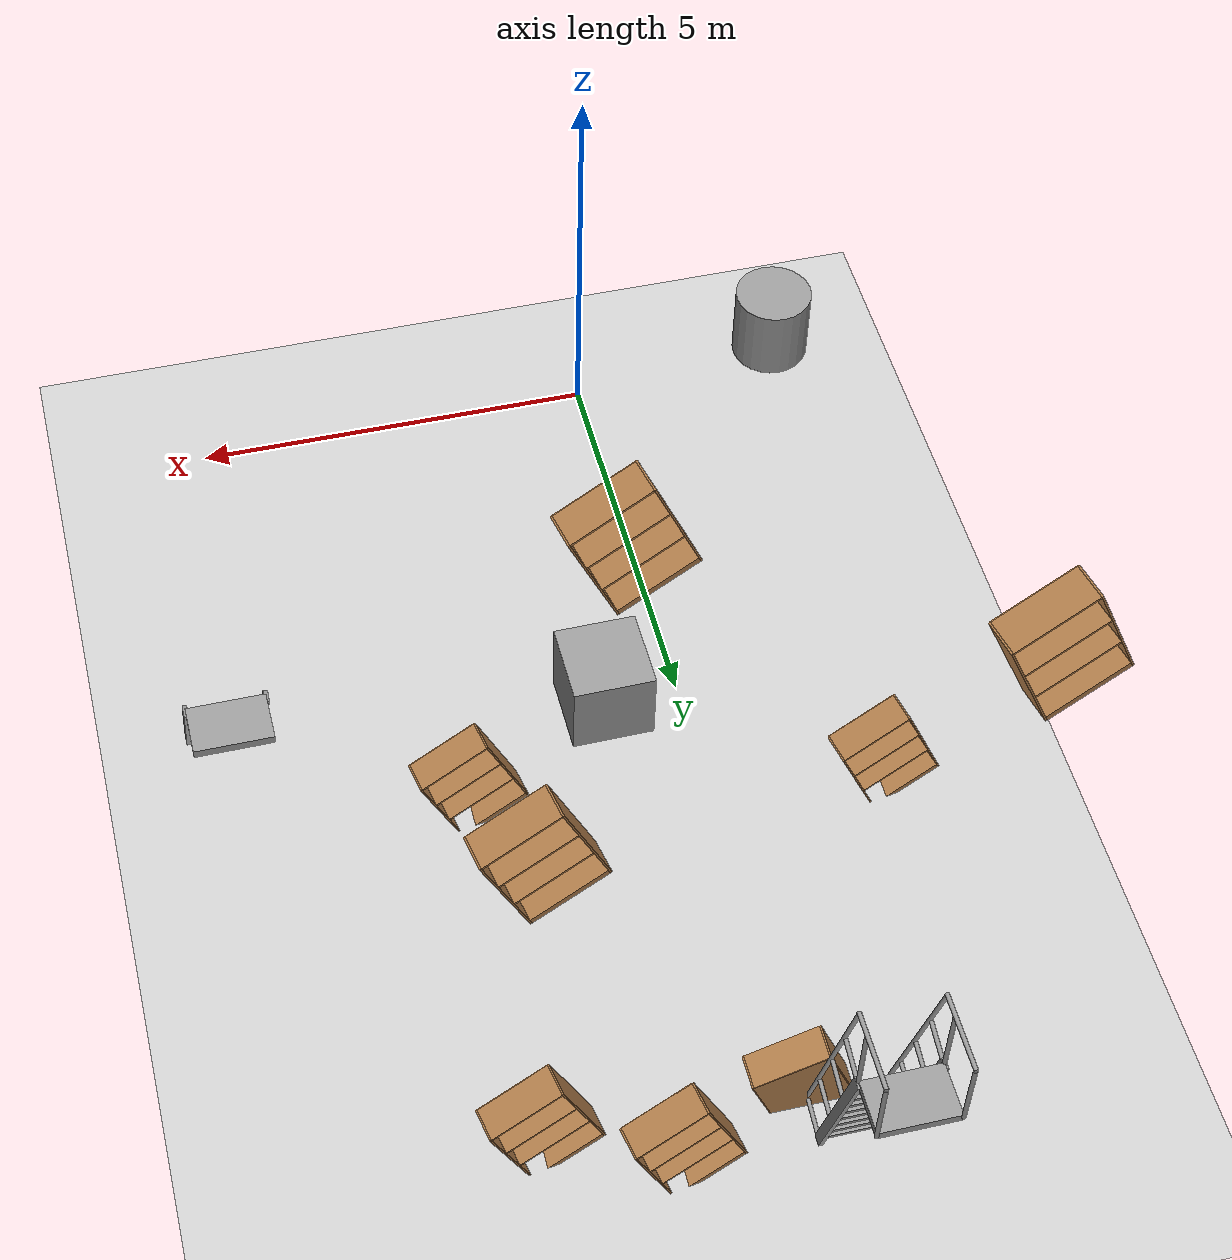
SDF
<sdf version="1.6">
 <world name="default">
  <model name="ground_plane">
   <static>1</static>
   <link name="link">
    <collision name="collision">
     <geometry><plane><normal>0 0 1</normal><size>100 100</size></plane></geometry>
     <surface><friction><ode><mu>100</mu><mu2>50</mu2></ode></friction></surface>
    </collision>
    <visual name="visual">
     <cast_shadows>0</cast_shadows>
     <geometry><plane><normal>0 0 1</normal><size>100 100</size></plane></geometry>
     <material>
      <script><uri>file://media/materials/scripts/gazebo.material</uri><name>Gazebo/Grey</name></script>
     </material>
    </visual>
   </link>
  </model>
  <model name="unit_cylinder">
   <pose>-2.73222 -0.271619 0.499994 -4e-06 -1e-06 0</pose>
   <link name="unit_cylinder::link">
    <inertial>
     <mass>1</mass>
     <inertia><ixx>0.145833</ixx><ixy>0</ixy><ixz>0</ixz><iyy>0.145833</iyy><iyz>0</iyz><izz>0.125</izz></inertia>
    </inertial>
    <collision name="collision">
     <geometry><cylinder><radius>0.5</radius><length>1</length></cylinder></geometry>
    </collision>
    <visual name="visual">
     <geometry><cylinder><radius>0.5</radius><length>1</length></cylinder></geometry>
     <material>
      <script><name>Gazebo/Grey</name><uri>file://media/materials/scripts/gazebo.material</uri></script>
     </material>
    </visual>
    <enable_wind>1</enable_wind>
    <kinematic>1</kinematic>
   </link>
  </model>
  <model name="bookshelf_0_clone_1">
   <static>1</static>
   <link name="link">
    <inertial><mass>1</mass></inertial>
    <collision name="back">
     <pose>0 0.005 0.6 0 -0 0</pose>
     <geometry><box><size>0.9 0.01 1.2</size></box></geometry>
    </collision>
    <visual name="visual1">
     <pose>0 0.005 0.6 0 -0 0</pose>
     <geometry><box><size>0.9 0.01 1.2</size></box></geometry>
     <material>
      <script><uri>file://media/materials/scripts/gazebo.material</uri><name>Gazebo/Wood</name></script>
     </material>
    </visual>
    <collision name="left_side">
     <pose>0.45 -0.195 0.6 0 -0 0</pose>
     <geometry><box><size>0.02 0.4 1.2</size></box></geometry>
    </collision>
    <visual name="visual2">
     <pose>0.45 -0.195 0.6 0 -0 0</pose>
     <geometry><box><size>0.02 0.4 1.2</size></box></geometry>
     <material>
      <script><uri>file://media/materials/scripts/gazebo.material</uri><name>Gazebo/Wood</name></script>
     </material>
    </visual>
    <collision name="right_side">
     <pose>-0.45 -0.195 0.6 0 -0 0</pose>
     <geometry><box><size>0.02 0.4 1.2</size></box></geometry>
    </collision>
    <visual name="visual3">
     <pose>-0.45 -0.195 0.6 0 -0 0</pose>
     <geometry><box><size>0.02 0.4 1.2</size></box></geometry>
     <material>
      <script><uri>file://media/materials/scripts/gazebo.material</uri><name>Gazebo/Wood</name></script>
     </material>
    </visual>
    <collision name="bottom">
     <pose>0 -0.195 0.03 0 -0 0</pose>
     <geometry><box><size>0.88 0.4 0.06</size></box></geometry>
    </collision>
    <visual name="visual4">
     <pose>0 -0.195 0.03 0 -0 0</pose>
     <geometry><box><size>0.88 0.4 0.06</size></box></geometry>
     <material>
      <script><uri>file://media/materials/scripts/gazebo.material</uri><name>Gazebo/Wood</name></script>
     </material>
    </visual>
    <collision name="top">
     <pose>0 -0.195 1.19 0 -0 0</pose>
     <geometry><box><size>0.88 0.4 0.02</size></box></geometry>
    </collision>
    <visual name="visual5">
     <pose>0 -0.195 1.19 0 -0 0</pose>
     <geometry><box><size>0.88 0.4 0.02</size></box></geometry>
     <material>
      <script><uri>file://media/materials/scripts/gazebo.material</uri><name>Gazebo/Wood</name></script>
     </material>
    </visual>
    <collision name="low_shelf">
     <pose>0 -0.195 0.43 0 -0 0</pose>
     <geometry><box><size>0.88 0.4 0.02</size></box></geometry>
    </collision>
    <visual name="visual6">
     <pose>0 -0.195 0.43 0 -0 0</pose>
     <geometry><box><size>0.88 0.4 0.02</size></box></geometry>
     <material>
      <script><uri>file://media/materials/scripts/gazebo.material</uri><name>Gazebo/Wood</name></script>
     </material>
    </visual>
    <collision name="high_shelf">
     <pose>0 -0.195 0.8 0 -0 0</pose>
     <geometry><box><size>0.88 0.4 0.02</size></box></geometry>
    </collision>
    <visual name="visual7">
     <pose>0 -0.195 0.8 0 -0 0</pose>
     <geometry><box><size>0.88 0.4 0.02</size></box></geometry>
     <material>
      <script><uri>file://media/materials/scripts/gazebo.material</uri><name>Gazebo/Wood</name></script>
     </material>
    </visual>
   </link>
   <pose>-0.09659 10.8007 -0.3401 0 0.357608 0</pose>
  </model>
  <model name="unit_box_1_clone_clone">
   <pose>0.931791 5.07815 0.499995 0 1e-05 0.005799</pose>
   <link name="unit_box_1_clone::link">
    <inertial>
     <mass>1</mass>
     <inertia>
      <ixx>0.166667</ixx>
      <ixy>0</ixy>
      <ixz>0</ixz>
      <iyy>0.166667</iyy>
      <iyz>0</iyz>
      <izz>0.166667</izz>
     </inertia>
    </inertial>
    <collision name="collision"><geometry><box><size>1 1 1</size></box></geometry></collision>
    <visual name="visual">
     <geometry><box><size>1 1 1</size></box></geometry>
     <material>
      <script><name>Gazebo/Grey</name><uri>file://media/materials/scripts/gazebo.material</uri></script>
     </material>
    </visual>
   </link>
  </model>
  <model name="bookshelf_2">
   <static>1</static>
   <link name="link">
    <inertial><mass>1</mass></inertial>
    <collision name="back">
     <pose>0 0.005 0.6 0 -0 0</pose>
     <geometry><box><size>0.9 0.01 1.2</size></box></geometry>
    </collision>
    <visual name="visual1">
     <pose>0 0.005 0.6 0 -0 0</pose>
     <geometry><box><size>0.9 0.01 1.2</size></box></geometry>
     <material>
      <script><uri>file://media/materials/scripts/gazebo.material</uri><name>Gazebo/Wood</name></script>
     </material>
    </visual>
    <collision name="left_side">
     <pose>0.45 -0.195 0.6 0 -0 0</pose>
     <geometry><box><size>0.02 0.4 1.2</size></box></geometry>
    </collision>
    <visual name="visual2">
     <pose>0.45 -0.195 0.6 0 -0 0</pose>
     <geometry><box><size>0.02 0.4 1.2</size></box></geometry>
     <material>
      <script><uri>file://media/materials/scripts/gazebo.material</uri><name>Gazebo/Wood</name></script>
     </material>
    </visual>
    <collision name="right_side">
     <pose>-0.45 -0.195 0.6 0 -0 0</pose>
     <geometry><box><size>0.02 0.4 1.2</size></box></geometry>
    </collision>
    <visual name="visual3">
     <pose>-0.45 -0.195 0.6 0 -0 0</pose>
     <geometry><box><size>0.02 0.4 1.2</size></box></geometry>
     <material>
      <script><uri>file://media/materials/scripts/gazebo.material</uri><name>Gazebo/Wood</name></script>
     </material>
    </visual>
    <collision name="bottom">
     <pose>0 -0.195 0.03 0 -0 0</pose>
     <geometry><box><size>0.88 0.4 0.06</size></box></geometry>
    </collision>
    <visual name="visual4">
     <pose>0 -0.195 0.03 0 -0 0</pose>
     <geometry><box><size>0.88 0.4 0.06</size></box></geometry>
     <material>
      <script><uri>file://media/materials/scripts/gazebo.material</uri><name>Gazebo/Wood</name></script>
     </material>
    </visual>
    <collision name="top">
     <pose>0 -0.195 1.19 0 -0 0</pose>
     <geometry><box><size>0.88 0.4 0.02</size></box></geometry>
    </collision>
    <visual name="visual5">
     <pose>0 -0.195 1.19 0 -0 0</pose>
     <geometry><box><size>0.88 0.4 0.02</size></box></geometry>
     <material>
      <script><uri>file://media/materials/scripts/gazebo.material</uri><name>Gazebo/Wood</name></script>
     </material>
    </visual>
    <collision name="low_shelf">
     <pose>0 -0.195 0.43 0 -0 0</pose>
     <geometry><box><size>0.88 0.4 0.02</size></box></geometry>
    </collision>
    <visual name="visual6">
     <pose>0 -0.195 0.43 0 -0 0</pose>
     <geometry><box><size>0.88 0.4 0.02</size></box></geometry>
     <material>
      <script><uri>file://media/materials/scripts/gazebo.material</uri><name>Gazebo/Wood</name></script>
     </material>
    </visual>
    <collision name="high_shelf">
     <pose>0 -0.195 0.8 0 -0 0</pose>
     <geometry><box><size>0.88 0.4 0.02</size></box></geometry>
    </collision>
    <visual name="visual7">
     <pose>0 -0.195 0.8 0 -0 0</pose>
     <geometry><box><size>0.88 0.4 0.02</size></box></geometry>
     <material>
      <script><uri>file://media/materials/scripts/gazebo.material</uri><name>Gazebo/Wood</name></script>
     </material>
    </visual>
   </link>
   <pose>-2.19777 6.68853 0 -0.077915 -0.400957 -2.94416</pose>
  </model>
  <model name="ladder_60deg_0rails">
   <static>1</static>
   <link name="step0">
    <pose>0 0.15396 0.266667 0 -0 0</pose>
    <inertial>
     <mass>9.75482</mass>
     <inertia>
      <ixx>0.00957124</ixx>
      <iyy>0.65963</iyy>
      <izz>0.666842</izz>
      <ixy>0</ixy>
      <ixz>0</ixz>
      <iyz>0</iyz>
     </inertia>
    </inertial>
    <collision name="collision"><geometry><box><size>0.9 0.1016 0.0381</size></box></geometry></collision>
    <visual name="visual">
     <geometry><box><size>0.9 0.1016 0.0381</size></box></geometry>
     <material>
      <script><uri>file://media/materials/scripts/gazebo.material</uri><name>Gazebo/Grey</name></script>
     </material>
    </visual>
   </link>
   <link name="step1">
    <pose>0 0.30792 0.533333 0 -0 0</pose>
    <inertial>
     <mass>9.75482</mass>
     <inertia>
      <ixx>0.00957124</ixx>
      <iyy>0.65963</iyy>
      <izz>0.666842</izz>
      <ixy>0</ixy>
      <ixz>0</ixz>
      <iyz>0</iyz>
     </inertia>
    </inertial>
    <collision name="collision"><geometry><box><size>0.9 0.1016 0.0381</size></box></geometry></collision>
    <visual name="visual">
     <geometry><box><size>0.9 0.1016 0.0381</size></box></geometry>
     <material>
      <script><uri>file://media/materials/scripts/gazebo.material</uri><name>Gazebo/Grey</name></script>
     </material>
    </visual>
   </link>
   <link name="step2">
    <pose>0 0.46188 0.8 0 -0 0</pose>
    <inertial>
     <mass>9.75482</mass>
     <inertia>
      <ixx>0.00957124</ixx>
      <iyy>0.65963</iyy>
      <izz>0.666842</izz>
      <ixy>0</ixy>
      <ixz>0</ixz>
      <iyz>0</iyz>
     </inertia>
    </inertial>
    <collision name="collision"><geometry><box><size>0.9 0.1016 0.0381</size></box></geometry></collision>
    <visual name="visual">
     <geometry><box><size>0.9 0.1016 0.0381</size></box></geometry>
     <material>
      <script><uri>file://media/materials/scripts/gazebo.material</uri><name>Gazebo/Grey</name></script>
     </material>
    </visual>
   </link>
   <link name="step3">
    <pose>0 0.61584 1.06667 0 -0 0</pose>
    <inertial>
     <mass>9.75482</mass>
     <inertia>
      <ixx>0.00957124</ixx>
      <iyy>0.65963</iyy>
      <izz>0.666842</izz>
      <ixy>0</ixy>
      <ixz>0</ixz>
      <iyz>0</iyz>
     </inertia>
    </inertial>
    <collision name="collision"><geometry><box><size>0.9 0.1016 0.0381</size></box></geometry></collision>
    <visual name="visual">
     <geometry><box><size>0.9 0.1016 0.0381</size></box></geometry>
     <material>
      <script><uri>file://media/materials/scripts/gazebo.material</uri><name>Gazebo/Grey</name></script>
     </material>
    </visual>
   </link>
   <link name="step4">
    <pose>0 0.7698 1.33333 0 -0 0</pose>
    <inertial>
     <mass>9.75482</mass>
     <inertia>
      <ixx>0.00957124</ixx>
      <iyy>0.65963</iyy>
      <izz>0.666842</izz>
      <ixy>0</ixy>
      <ixz>0</ixz>
      <iyz>0</iyz>
     </inertia>
    </inertial>
    <collision name="collision"><geometry><box><size>0.9 0.1016 0.0381</size></box></geometry></collision>
    <visual name="visual">
     <geometry><box><size>0.9 0.1016 0.0381</size></box></geometry>
     <material>
      <script><uri>file://media/materials/scripts/gazebo.material</uri><name>Gazebo/Grey</name></script>
     </material>
    </visual>
   </link>
   <link name="step5">
    <pose>0 0.92376 1.6 0 -0 0</pose>
    <inertial>
     <mass>9.75482</mass>
     <inertia>
      <ixx>0.00957124</ixx>
      <iyy>0.65963</iyy>
      <izz>0.666842</izz>
      <ixy>0</ixy>
      <ixz>0</ixz>
      <iyz>0</iyz>
     </inertia>
    </inertial>
    <collision name="collision"><geometry><box><size>0.9 0.1016 0.0381</size></box></geometry></collision>
    <visual name="visual">
     <geometry><box><size>0.9 0.1016 0.0381</size></box></geometry>
     <material>
      <script><uri>file://media/materials/scripts/gazebo.material</uri><name>Gazebo/Grey</name></script>
     </material>
    </visual>
   </link>
   <link name="step6">
    <pose>0 1.07772 1.86667 0 -0 0</pose>
    <inertial>
     <mass>9.75482</mass>
     <inertia>
      <ixx>0.00957124</ixx>
      <iyy>0.65963</iyy>
      <izz>0.666842</izz>
      <ixy>0</ixy>
      <ixz>0</ixz>
      <iyz>0</iyz>
     </inertia>
    </inertial>
    <collision name="collision"><geometry><box><size>0.9 0.1016 0.0381</size></box></geometry></collision>
    <visual name="visual">
     <geometry><box><size>0.9 0.1016 0.0381</size></box></geometry>
     <material>
      <script><uri>file://media/materials/scripts/gazebo.material</uri><name>Gazebo/Grey</name></script>
     </material>
    </visual>
   </link>
   <link name="step7">
    <pose>0 1.23168 2.13333 0 -0 0</pose>
    <inertial>
     <mass>9.75482</mass>
     <inertia>
      <ixx>0.00957124</ixx>
      <iyy>0.65963</iyy>
      <izz>0.666842</izz>
      <ixy>0</ixy>
      <ixz>0</ixz>
      <iyz>0</iyz>
     </inertia>
    </inertial>
    <collision name="collision"><geometry><box><size>0.9 0.1016 0.0381</size></box></geometry></collision>
    <visual name="visual">
     <geometry><box><size>0.9 0.1016 0.0381</size></box></geometry>
     <material>
      <script><uri>file://media/materials/scripts/gazebo.material</uri><name>Gazebo/Grey</name></script>
     </material>
    </visual>
   </link>
   <link name="landing">
    <pose>0 1.68564 2.4 0 -0 0</pose>
    <inertial>
     <mass>57.6072</mass>
     <inertia><ixx>1.73518</ixx><iyy>3.89545</iyy><izz>5.6167</izz><ixy>0</ixy><ixz>0</ixz><iyz>0</iyz></inertia>
    </inertial>
    <collision name="collision"><geometry><box><size>0.9 0.6 0.1016</size></box></geometry></collision>
    <visual name="visual">
     <geometry><box><size>0.9 0.6 0.1016</size></box></geometry>
     <material>
      <script><uri>file://media/materials/scripts/gazebo.material</uri><name>Gazebo/Grey</name></script>
     </material>
    </visual>
   </link>
   <link name="left_side_wall">
    <pose>-0.45 0.69282 1.2 1.0472 -0 0</pose>
    <collision name="collision"><geometry><box><size>0.0508 2.85128 0.13</size></box></geometry></collision>
    <visual name="visual">
     <geometry><box><size>0.0508 2.85128 0.13</size></box></geometry>
     <material>
      <script><uri>file://media/materials/scripts/gazebo.material</uri><name>Gazebo/Grey</name></script>
     </material>
    </visual>
   </link>
   <link name="right_side_wall">
    <pose>0.45 0.69282 1.2 1.0472 -0 0</pose>
    <collision name="collision"><geometry><box><size>0.0508 2.85128 0.13</size></box></geometry></collision>
    <visual name="visual">
     <geometry><box><size>0.0508 2.85128 0.13</size></box></geometry>
     <material>
      <script><uri>file://media/materials/scripts/gazebo.material</uri><name>Gazebo/Grey</name></script>
     </material>
    </visual>
   </link>
   <pose>5.45548 4.41479 0 0 -0 0</pose>
  </model>
  <model name="ladder_75deg_2rails_0">
   <static>1</static>
   <link name="step0">
    <pose>0 0.071453 0.266667 0 -0 0</pose>
    <inertial>
     <mass>9.75482</mass>
     <inertia>
      <ixx>0.00957124</ixx>
      <iyy>0.65963</iyy>
      <izz>0.666842</izz>
      <ixy>0</ixy>
      <ixz>0</ixz>
      <iyz>0</iyz>
     </inertia>
    </inertial>
    <collision name="collision"><geometry><box><size>0.9 0.1016 0.0381</size></box></geometry></collision>
    <visual name="visual">
     <geometry><box><size>0.9 0.1016 0.0381</size></box></geometry>
     <material>
      <script><uri>file://media/materials/scripts/gazebo.material</uri><name>Gazebo/Grey</name></script>
     </material>
    </visual>
   </link>
   <link name="step1">
    <pose>0 0.142906 0.533333 0 -0 0</pose>
    <inertial>
     <mass>9.75482</mass>
     <inertia>
      <ixx>0.00957124</ixx>
      <iyy>0.65963</iyy>
      <izz>0.666842</izz>
      <ixy>0</ixy>
      <ixz>0</ixz>
      <iyz>0</iyz>
     </inertia>
    </inertial>
    <collision name="collision"><geometry><box><size>0.9 0.1016 0.0381</size></box></geometry></collision>
    <visual name="visual">
     <geometry><box><size>0.9 0.1016 0.0381</size></box></geometry>
     <material>
      <script><uri>file://media/materials/scripts/gazebo.material</uri><name>Gazebo/Grey</name></script>
     </material>
    </visual>
   </link>
   <link name="step2">
    <pose>0 0.214359 0.8 0 -0 0</pose>
    <inertial>
     <mass>9.75482</mass>
     <inertia>
      <ixx>0.00957124</ixx>
      <iyy>0.65963</iyy>
      <izz>0.666842</izz>
      <ixy>0</ixy>
      <ixz>0</ixz>
      <iyz>0</iyz>
     </inertia>
    </inertial>
    <collision name="collision"><geometry><box><size>0.9 0.1016 0.0381</size></box></geometry></collision>
    <visual name="visual">
     <geometry><box><size>0.9 0.1016 0.0381</size></box></geometry>
     <material>
      <script><uri>file://media/materials/scripts/gazebo.material</uri><name>Gazebo/Grey</name></script>
     </material>
    </visual>
   </link>
   <link name="step3">
    <pose>0 0.285812 1.06667 0 -0 0</pose>
    <inertial>
     <mass>9.75482</mass>
     <inertia>
      <ixx>0.00957124</ixx>
      <iyy>0.65963</iyy>
      <izz>0.666842</izz>
      <ixy>0</ixy>
      <ixz>0</ixz>
      <iyz>0</iyz>
     </inertia>
    </inertial>
    <collision name="collision"><geometry><box><size>0.9 0.1016 0.0381</size></box></geometry></collision>
    <visual name="visual">
     <geometry><box><size>0.9 0.1016 0.0381</size></box></geometry>
     <material>
      <script><uri>file://media/materials/scripts/gazebo.material</uri><name>Gazebo/Grey</name></script>
     </material>
    </visual>
   </link>
   <link name="step4">
    <pose>0 0.357266 1.33333 0 -0 0</pose>
    <inertial>
     <mass>9.75482</mass>
     <inertia>
      <ixx>0.00957124</ixx>
      <iyy>0.65963</iyy>
      <izz>0.666842</izz>
      <ixy>0</ixy>
      <ixz>0</ixz>
      <iyz>0</iyz>
     </inertia>
    </inertial>
    <collision name="collision"><geometry><box><size>0.9 0.1016 0.0381</size></box></geometry></collision>
    <visual name="visual">
     <geometry><box><size>0.9 0.1016 0.0381</size></box></geometry>
     <material>
      <script><uri>file://media/materials/scripts/gazebo.material</uri><name>Gazebo/Grey</name></script>
     </material>
    </visual>
   </link>
   <link name="step5">
    <pose>0 0.428719 1.6 0 -0 0</pose>
    <inertial>
     <mass>9.75482</mass>
     <inertia>
      <ixx>0.00957124</ixx>
      <iyy>0.65963</iyy>
      <izz>0.666842</izz>
      <ixy>0</ixy>
      <ixz>0</ixz>
      <iyz>0</iyz>
     </inertia>
    </inertial>
    <collision name="collision"><geometry><box><size>0.9 0.1016 0.0381</size></box></geometry></collision>
    <visual name="visual">
     <geometry><box><size>0.9 0.1016 0.0381</size></box></geometry>
     <material>
      <script><uri>file://media/materials/scripts/gazebo.material</uri><name>Gazebo/Grey</name></script>
     </material>
    </visual>
   </link>
   <link name="step6">
    <pose>0 0.500172 1.86667 0 -0 0</pose>
    <inertial>
     <mass>9.75482</mass>
     <inertia>
      <ixx>0.00957124</ixx>
      <iyy>0.65963</iyy>
      <izz>0.666842</izz>
      <ixy>0</ixy>
      <ixz>0</ixz>
      <iyz>0</iyz>
     </inertia>
    </inertial>
    <collision name="collision"><geometry><box><size>0.9 0.1016 0.0381</size></box></geometry></collision>
    <visual name="visual">
     <geometry><box><size>0.9 0.1016 0.0381</size></box></geometry>
     <material>
      <script><uri>file://media/materials/scripts/gazebo.material</uri><name>Gazebo/Grey</name></script>
     </material>
    </visual>
   </link>
   <link name="step7">
    <pose>0 0.571625 2.13333 0 -0 0</pose>
    <inertial>
     <mass>9.75482</mass>
     <inertia>
      <ixx>0.00957124</ixx>
      <iyy>0.65963</iyy>
      <izz>0.666842</izz>
      <ixy>0</ixy>
      <ixz>0</ixz>
      <iyz>0</iyz>
     </inertia>
    </inertial>
    <collision name="collision"><geometry><box><size>0.9 0.1016 0.0381</size></box></geometry></collision>
    <visual name="visual">
     <geometry><box><size>0.9 0.1016 0.0381</size></box></geometry>
     <material>
      <script><uri>file://media/materials/scripts/gazebo.material</uri><name>Gazebo/Grey</name></script>
     </material>
    </visual>
   </link>
   <link name="landing">
    <pose>0 0.943078 2.4 0 -0 0</pose>
    <inertial>
     <mass>57.6072</mass>
     <inertia><ixx>1.73518</ixx><iyy>3.89545</iyy><izz>5.6167</izz><ixy>0</ixy><ixz>0</ixz><iyz>0</iyz></inertia>
    </inertial>
    <collision name="collision"><geometry><box><size>0.9 0.6 0.1016</size></box></geometry></collision>
    <visual name="visual">
     <geometry><box><size>0.9 0.6 0.1016</size></box></geometry>
     <material>
      <script><uri>file://media/materials/scripts/gazebo.material</uri><name>Gazebo/Grey</name></script>
     </material>
    </visual>
   </link>
   <link name="left_side_wall">
    <pose>-0.45 0.321539 1.2 1.309 -0 0</pose>
    <collision name="collision"><geometry><box><size>0.0508 2.56466 0.13</size></box></geometry></collision>
    <visual name="visual">
     <geometry><box><size>0.0508 2.56466 0.13</size></box></geometry>
     <material>
      <script><uri>file://media/materials/scripts/gazebo.material</uri><name>Gazebo/Grey</name></script>
     </material>
    </visual>
   </link>
   <link name="right_side_wall">
    <pose>0.45 0.321539 1.2 1.309 -0 0</pose>
    <collision name="collision"><geometry><box><size>0.0508 2.56466 0.13</size></box></geometry></collision>
    <visual name="visual">
     <geometry><box><size>0.0508 2.56466 0.13</size></box></geometry>
     <material>
      <script><uri>file://media/materials/scripts/gazebo.material</uri><name>Gazebo/Grey</name></script>
     </material>
    </visual>
   </link>
   <link name="left_railing_long">
    <pose>-0.45 -0.053461 1.66651 -0.261799 0 0</pose>
    <collision name="collision">
     <geometry><cylinder><radius>0.02413</radius><length>3.51529</length></cylinder></geometry>
    </collision>
    <visual name="visual">
     <geometry><cylinder><radius>0.02413</radius><length>3.51529</length></cylinder></geometry>
     <material>
      <script><uri>file://media/materials/scripts/gazebo.material</uri><name>Gazebo/Grey</name></script>
     </material>
    </visual>
   </link>
   <link name="left_railing_upright0">
    <pose>-0.45 -0.210089 0.056293 1.309 -0 0</pose>
    <collision name="collision">
     <geometry><cylinder><radius>0.02413</radius><length>0.482963</length></cylinder></geometry>
    </collision>
    <visual name="visual">
     <geometry><cylinder><radius>0.02413</radius><length>0.482963</length></cylinder></geometry>
     <material>
      <script><uri>file://media/materials/scripts/gazebo.material</uri><name>Gazebo/Grey</name></script>
     </material>
    </visual>
   </link>
   <link name="left_railing_upright1">
    <pose>-0.45 0.00427 0.856293 1.309 -0 0</pose>
    <collision name="collision">
     <geometry><cylinder><radius>0.02413</radius><length>0.482963</length></cylinder></geometry>
    </collision>
    <visual name="visual">
     <geometry><cylinder><radius>0.02413</radius><length>0.482963</length></cylinder></geometry>
     <material>
      <script><uri>file://media/materials/scripts/gazebo.material</uri><name>Gazebo/Grey</name></script>
     </material>
    </visual>
   </link>
   <link name="left_railing_upright2">
    <pose>-0.45 0.21863 1.65629 1.309 -0 0</pose>
    <collision name="collision">
     <geometry><cylinder><radius>0.02413</radius><length>0.482963</length></cylinder></geometry>
    </collision>
    <visual name="visual">
     <geometry><cylinder><radius>0.02413</radius><length>0.482963</length></cylinder></geometry>
     <material>
      <script><uri>file://media/materials/scripts/gazebo.material</uri><name>Gazebo/Grey</name></script>
     </material>
    </visual>
   </link>
   <link name="left_railing_upright3">
    <pose>-0.45 0.432989 2.45629 1.309 -0 0</pose>
    <collision name="collision">
     <geometry><cylinder><radius>0.02413</radius><length>0.482963</length></cylinder></geometry>
    </collision>
    <visual name="visual">
     <geometry><cylinder><radius>0.02413</radius><length>0.482963</length></cylinder></geometry>
     <material>
      <script><uri>file://media/materials/scripts/gazebo.material</uri><name>Gazebo/Grey</name></script>
     </material>
    </visual>
   </link>
   <link name="left_railing_landing_top">
    <pose>-0.45 0.818078 3.35714 1.5708 -0 0</pose>
    <collision name="collision">
     <geometry><cylinder><radius>0.02413</radius><length>0.87413</length></cylinder></geometry>
    </collision>
    <visual name="visual">
     <geometry><cylinder><radius>0.02413</radius><length>0.87413</length></cylinder></geometry>
     <material>
      <script><uri>file://media/materials/scripts/gazebo.material</uri><name>Gazebo/Grey</name></script>
     </material>
    </visual>
   </link>
   <link name="left_railing_landing_upright_0">
    <pose>-0.45 0.643078 2.86651 0 -0 0</pose>
    <collision name="collision">
     <geometry><cylinder><radius>0.02413</radius><length>0.933013</length></cylinder></geometry>
    </collision>
    <visual name="visual">
     <geometry><cylinder><radius>0.02413</radius><length>0.933013</length></cylinder></geometry>
     <material>
      <script><uri>file://media/materials/scripts/gazebo.material</uri><name>Gazebo/Grey</name></script>
     </material>
    </visual>
   </link>
   <link name="left_railing_landing_upright_1">
    <pose>-0.45 1.24308 2.86651 0 -0 0</pose>
    <collision name="collision">
     <geometry><cylinder><radius>0.02413</radius><length>0.933013</length></cylinder></geometry>
    </collision>
    <visual name="visual">
     <geometry><cylinder><radius>0.02413</radius><length>0.933013</length></cylinder></geometry>
     <material>
      <script><uri>file://media/materials/scripts/gazebo.material</uri><name>Gazebo/Grey</name></script>
     </material>
    </visual>
   </link>
   <link name="right_railing_long">
    <pose>0.45 -0.053461 1.66651 -0.261799 0 0</pose>
    <collision name="collision">
     <geometry><cylinder><radius>0.02413</radius><length>3.51529</length></cylinder></geometry>
    </collision>
    <visual name="visual">
     <geometry><cylinder><radius>0.02413</radius><length>3.51529</length></cylinder></geometry>
     <material>
      <script><uri>file://media/materials/scripts/gazebo.material</uri><name>Gazebo/Grey</name></script>
     </material>
    </visual>
   </link>
   <link name="right_railing_upright0">
    <pose>0.45 -0.210089 0.056293 1.309 -0 0</pose>
    <collision name="collision">
     <geometry><cylinder><radius>0.02413</radius><length>0.482963</length></cylinder></geometry>
    </collision>
    <visual name="visual">
     <geometry><cylinder><radius>0.02413</radius><length>0.482963</length></cylinder></geometry>
     <material>
      <script><uri>file://media/materials/scripts/gazebo.material</uri><name>Gazebo/Grey</name></script>
     </material>
    </visual>
   </link>
   <link name="right_railing_upright1">
    <pose>0.45 0.00427 0.856293 1.309 -0 0</pose>
    <collision name="collision">
     <geometry><cylinder><radius>0.02413</radius><length>0.482963</length></cylinder></geometry>
    </collision>
    <visual name="visual">
     <geometry><cylinder><radius>0.02413</radius><length>0.482963</length></cylinder></geometry>
     <material>
      <script><uri>file://media/materials/scripts/gazebo.material</uri><name>Gazebo/Grey</name></script>
     </material>
    </visual>
   </link>
   <link name="right_railing_upright2">
    <pose>0.45 0.21863 1.65629 1.309 -0 0</pose>
    <collision name="collision">
     <geometry><cylinder><radius>0.02413</radius><length>0.482963</length></cylinder></geometry>
    </collision>
    <visual name="visual">
     <geometry><cylinder><radius>0.02413</radius><length>0.482963</length></cylinder></geometry>
     <material>
      <script><uri>file://media/materials/scripts/gazebo.material</uri><name>Gazebo/Grey</name></script>
     </material>
    </visual>
   </link>
   <link name="right_railing_upright3">
    <pose>0.45 0.432989 2.45629 1.309 -0 0</pose>
    <collision name="collision">
     <geometry><cylinder><radius>0.02413</radius><length>0.482963</length></cylinder></geometry>
    </collision>
    <visual name="visual">
     <geometry><cylinder><radius>0.02413</radius><length>0.482963</length></cylinder></geometry>
     <material>
      <script><uri>file://media/materials/scripts/gazebo.material</uri><name>Gazebo/Grey</name></script>
     </material>
    </visual>
   </link>
   <link name="right_railing_landing_top">
    <pose>0.45 0.818078 3.35714 1.5708 -0 0</pose>
    <collision name="collision">
     <geometry><cylinder><radius>0.02413</radius><length>0.87413</length></cylinder></geometry>
    </collision>
    <visual name="visual">
     <geometry><cylinder><radius>0.02413</radius><length>0.87413</length></cylinder></geometry>
     <material>
      <script><uri>file://media/materials/scripts/gazebo.material</uri><name>Gazebo/Grey</name></script>
     </material>
    </visual>
   </link>
   <link name="right_railing_landing_upright_0">
    <pose>0.45 0.643078 2.86651 0 -0 0</pose>
    <collision name="collision">
     <geometry><cylinder><radius>0.02413</radius><length>0.933013</length></cylinder></geometry>
    </collision>
    <visual name="visual">
     <geometry><cylinder><radius>0.02413</radius><length>0.933013</length></cylinder></geometry>
     <material>
      <script><uri>file://media/materials/scripts/gazebo.material</uri><name>Gazebo/Grey</name></script>
     </material>
    </visual>
   </link>
   <link name="right_railing_landing_upright_1">
    <pose>0.45 1.24308 2.86651 0 -0 0</pose>
    <collision name="collision">
     <geometry><cylinder><radius>0.02413</radius><length>0.933013</length></cylinder></geometry>
    </collision>
    <visual name="visual">
     <geometry><cylinder><radius>0.02413</radius><length>0.933013</length></cylinder></geometry>
     <material>
      <script><uri>file://media/materials/scripts/gazebo.material</uri><name>Gazebo/Grey</name></script>
     </material>
    </visual>
   </link>
   <pose>-0.360157 11.2451 0 0 -0 0</pose>
  </model>
  <model name="bookshelf_2_clone">
   <static>1</static>
   <link name="link">
    <inertial><mass>1</mass></inertial>
    <collision name="back">
     <pose>0 0.005 0.6 0 -0 0</pose>
     <geometry><box><size>0.9 0.01 1.2</size></box></geometry>
    </collision>
    <visual name="visual1">
     <pose>0 0.005 0.6 0 -0 0</pose>
     <geometry><box><size>0.9 0.01 1.2</size></box></geometry>
     <material>
      <script><uri>file://media/materials/scripts/gazebo.material</uri><name>Gazebo/Wood</name></script>
     </material>
    </visual>
    <collision name="left_side">
     <pose>0.45 -0.195 0.6 0 -0 0</pose>
     <geometry><box><size>0.02 0.4 1.2</size></box></geometry>
    </collision>
    <visual name="visual2">
     <pose>0.45 -0.195 0.6 0 -0 0</pose>
     <geometry><box><size>0.02 0.4 1.2</size></box></geometry>
     <material>
      <script><uri>file://media/materials/scripts/gazebo.material</uri><name>Gazebo/Wood</name></script>
     </material>
    </visual>
    <collision name="right_side">
     <pose>-0.45 -0.195 0.6 0 -0 0</pose>
     <geometry><box><size>0.02 0.4 1.2</size></box></geometry>
    </collision>
    <visual name="visual3">
     <pose>-0.45 -0.195 0.6 0 -0 0</pose>
     <geometry><box><size>0.02 0.4 1.2</size></box></geometry>
     <material>
      <script><uri>file://media/materials/scripts/gazebo.material</uri><name>Gazebo/Wood</name></script>
     </material>
    </visual>
    <collision name="bottom">
     <pose>0 -0.195 0.03 0 -0 0</pose>
     <geometry><box><size>0.88 0.4 0.06</size></box></geometry>
    </collision>
    <visual name="visual4">
     <pose>0 -0.195 0.03 0 -0 0</pose>
     <geometry><box><size>0.88 0.4 0.06</size></box></geometry>
     <material>
      <script><uri>file://media/materials/scripts/gazebo.material</uri><name>Gazebo/Wood</name></script>
     </material>
    </visual>
    <collision name="top">
     <pose>0 -0.195 1.19 0 -0 0</pose>
     <geometry><box><size>0.88 0.4 0.02</size></box></geometry>
    </collision>
    <visual name="visual5">
     <pose>0 -0.195 1.19 0 -0 0</pose>
     <geometry><box><size>0.88 0.4 0.02</size></box></geometry>
     <material>
      <script><uri>file://media/materials/scripts/gazebo.material</uri><name>Gazebo/Wood</name></script>
     </material>
    </visual>
    <collision name="low_shelf">
     <pose>0 -0.195 0.43 0 -0 0</pose>
     <geometry><box><size>0.88 0.4 0.02</size></box></geometry>
    </collision>
    <visual name="visual6">
     <pose>0 -0.195 0.43 0 -0 0</pose>
     <geometry><box><size>0.88 0.4 0.02</size></box></geometry>
     <material>
      <script><uri>file://media/materials/scripts/gazebo.material</uri><name>Gazebo/Wood</name></script>
     </material>
    </visual>
    <collision name="high_shelf">
     <pose>0 -0.195 0.8 0 -0 0</pose>
     <geometry><box><size>0.88 0.4 0.02</size></box></geometry>
    </collision>
    <visual name="visual7">
     <pose>0 -0.195 0.8 0 -0 0</pose>
     <geometry><box><size>0.88 0.4 0.02</size></box></geometry>
     <material>
      <script><uri>file://media/materials/scripts/gazebo.material</uri><name>Gazebo/Wood</name></script>
     </material>
    </visual>
   </link>
   <pose>-1.74543 10.7341 7.27061 -0.077915 -0.400957 -2.94416</pose>
  </model>
  <model name="bookshelf_2_clone_1">
   <static>1</static>
   <link name="link">
    <inertial><mass>1</mass></inertial>
    <collision name="back">
     <pose>0 0.005 0.6 0 -0 0</pose>
     <geometry><box><size>0.9 0.01 1.2</size></box></geometry>
    </collision>
    <visual name="visual1">
     <pose>0 0.005 0.6 0 -0 0</pose>
     <geometry><box><size>0.9 0.01 1.2</size></box></geometry>
     <material>
      <script><uri>file://media/materials/scripts/gazebo.material</uri><name>Gazebo/Wood</name></script>
     </material>
    </visual>
    <collision name="left_side">
     <pose>0.45 -0.195 0.6 0 -0 0</pose>
     <geometry><box><size>0.02 0.4 1.2</size></box></geometry>
    </collision>
    <visual name="visual2">
     <pose>0.45 -0.195 0.6 0 -0 0</pose>
     <geometry><box><size>0.02 0.4 1.2</size></box></geometry>
     <material>
      <script><uri>file://media/materials/scripts/gazebo.material</uri><name>Gazebo/Wood</name></script>
     </material>
    </visual>
    <collision name="right_side">
     <pose>-0.45 -0.195 0.6 0 -0 0</pose>
     <geometry><box><size>0.02 0.4 1.2</size></box></geometry>
    </collision>
    <visual name="visual3">
     <pose>-0.45 -0.195 0.6 0 -0 0</pose>
     <geometry><box><size>0.02 0.4 1.2</size></box></geometry>
     <material>
      <script><uri>file://media/materials/scripts/gazebo.material</uri><name>Gazebo/Wood</name></script>
     </material>
    </visual>
    <collision name="bottom">
     <pose>0 -0.195 0.03 0 -0 0</pose>
     <geometry><box><size>0.88 0.4 0.06</size></box></geometry>
    </collision>
    <visual name="visual4">
     <pose>0 -0.195 0.03 0 -0 0</pose>
     <geometry><box><size>0.88 0.4 0.06</size></box></geometry>
     <material>
      <script><uri>file://media/materials/scripts/gazebo.material</uri><name>Gazebo/Wood</name></script>
     </material>
    </visual>
    <collision name="top">
     <pose>0 -0.195 1.19 0 -0 0</pose>
     <geometry><box><size>0.88 0.4 0.02</size></box></geometry>
    </collision>
    <visual name="visual5">
     <pose>0 -0.195 1.19 0 -0 0</pose>
     <geometry><box><size>0.88 0.4 0.02</size></box></geometry>
     <material>
      <script><uri>file://media/materials/scripts/gazebo.material</uri><name>Gazebo/Wood</name></script>
     </material>
    </visual>
    <collision name="low_shelf">
     <pose>0 -0.195 0.43 0 -0 0</pose>
     <geometry><box><size>0.88 0.4 0.02</size></box></geometry>
    </collision>
    <visual name="visual6">
     <pose>0 -0.195 0.43 0 -0 0</pose>
     <geometry><box><size>0.88 0.4 0.02</size></box></geometry>
     <material>
      <script><uri>file://media/materials/scripts/gazebo.material</uri><name>Gazebo/Wood</name></script>
     </material>
    </visual>
    <collision name="high_shelf">
     <pose>0 -0.195 0.8 0 -0 0</pose>
     <geometry><box><size>0.88 0.4 0.02</size></box></geometry>
    </collision>
    <visual name="visual7">
     <pose>0 -0.195 0.8 0 -0 0</pose>
     <geometry><box><size>0.88 0.4 0.02</size></box></geometry>
     <material>
      <script><uri>file://media/materials/scripts/gazebo.material</uri><name>Gazebo/Wood</name></script>
     </material>
    </visual>
   </link>
   <pose>2.61696 5.97194 0 -0.077915 -0.400957 -2.94416</pose>
  </model>
  <model name="bookshelf_2_clone_2">
   <static>1</static>
   <link name="link">
    <inertial><mass>1</mass></inertial>
    <collision name="back">
     <pose>0 0.005 0.6 0 -0 0</pose>
     <geometry><box><size>0.9 0.01 1.2</size></box></geometry>
    </collision>
    <visual name="visual1">
     <pose>0 0.005 0.6 0 -0 0</pose>
     <geometry><box><size>0.9 0.01 1.2</size></box></geometry>
     <material>
      <script><uri>file://media/materials/scripts/gazebo.material</uri><name>Gazebo/Wood</name></script>
     </material>
    </visual>
    <collision name="left_side">
     <pose>0.45 -0.195 0.6 0 -0 0</pose>
     <geometry><box><size>0.02 0.4 1.2</size></box></geometry>
    </collision>
    <visual name="visual2">
     <pose>0.45 -0.195 0.6 0 -0 0</pose>
     <geometry><box><size>0.02 0.4 1.2</size></box></geometry>
     <material>
      <script><uri>file://media/materials/scripts/gazebo.material</uri><name>Gazebo/Wood</name></script>
     </material>
    </visual>
    <collision name="right_side">
     <pose>-0.45 -0.195 0.6 0 -0 0</pose>
     <geometry><box><size>0.02 0.4 1.2</size></box></geometry>
    </collision>
    <visual name="visual3">
     <pose>-0.45 -0.195 0.6 0 -0 0</pose>
     <geometry><box><size>0.02 0.4 1.2</size></box></geometry>
     <material>
      <script><uri>file://media/materials/scripts/gazebo.material</uri><name>Gazebo/Wood</name></script>
     </material>
    </visual>
    <collision name="bottom">
     <pose>0 -0.195 0.03 0 -0 0</pose>
     <geometry><box><size>0.88 0.4 0.06</size></box></geometry>
    </collision>
    <visual name="visual4">
     <pose>0 -0.195 0.03 0 -0 0</pose>
     <geometry><box><size>0.88 0.4 0.06</size></box></geometry>
     <material>
      <script><uri>file://media/materials/scripts/gazebo.material</uri><name>Gazebo/Wood</name></script>
     </material>
    </visual>
    <collision name="top">
     <pose>0 -0.195 1.19 0 -0 0</pose>
     <geometry><box><size>0.88 0.4 0.02</size></box></geometry>
    </collision>
    <visual name="visual5">
     <pose>0 -0.195 1.19 0 -0 0</pose>
     <geometry><box><size>0.88 0.4 0.02</size></box></geometry>
     <material>
      <script><uri>file://media/materials/scripts/gazebo.material</uri><name>Gazebo/Wood</name></script>
     </material>
    </visual>
    <collision name="low_shelf">
     <pose>0 -0.195 0.43 0 -0 0</pose>
     <geometry><box><size>0.88 0.4 0.02</size></box></geometry>
    </collision>
    <visual name="visual6">
     <pose>0 -0.195 0.43 0 -0 0</pose>
     <geometry><box><size>0.88 0.4 0.02</size></box></geometry>
     <material>
      <script><uri>file://media/materials/scripts/gazebo.material</uri><name>Gazebo/Wood</name></script>
     </material>
    </visual>
    <collision name="high_shelf">
     <pose>0 -0.195 0.8 0 -0 0</pose>
     <geometry><box><size>0.88 0.4 0.02</size></box></geometry>
    </collision>
    <visual name="visual7">
     <pose>0 -0.195 0.8 0 -0 0</pose>
     <geometry><box><size>0.88 0.4 0.02</size></box></geometry>
     <material>
      <script><uri>file://media/materials/scripts/gazebo.material</uri><name>Gazebo/Wood</name></script>
     </material>
    </visual>
   </link>
   <pose>2.82085 10.4596 0 -0.077915 -0.400957 -2.94416</pose>
  </model>
  <model name="bookshelf_2_clone_4">
   <static>1</static>
   <link name="link">
    <inertial><mass>1</mass></inertial>
    <collision name="back">
     <pose>0 0.005 0.6 0 -0 0</pose>
     <geometry><box><size>0.9 0.01 1.2</size></box></geometry>
    </collision>
    <visual name="visual1">
     <pose>0 0.005 0.6 0 -0 0</pose>
     <geometry><box><size>0.9 0.01 1.2</size></box></geometry>
     <material>
      <script><uri>file://media/materials/scripts/gazebo.material</uri><name>Gazebo/Wood</name></script>
     </material>
    </visual>
    <collision name="left_side">
     <pose>0.45 -0.195 0.6 0 -0 0</pose>
     <geometry><box><size>0.02 0.4 1.2</size></box></geometry>
    </collision>
    <visual name="visual2">
     <pose>0.45 -0.195 0.6 0 -0 0</pose>
     <geometry><box><size>0.02 0.4 1.2</size></box></geometry>
     <material>
      <script><uri>file://media/materials/scripts/gazebo.material</uri><name>Gazebo/Wood</name></script>
     </material>
    </visual>
    <collision name="right_side">
     <pose>-0.45 -0.195 0.6 0 -0 0</pose>
     <geometry><box><size>0.02 0.4 1.2</size></box></geometry>
    </collision>
    <visual name="visual3">
     <pose>-0.45 -0.195 0.6 0 -0 0</pose>
     <geometry><box><size>0.02 0.4 1.2</size></box></geometry>
     <material>
      <script><uri>file://media/materials/scripts/gazebo.material</uri><name>Gazebo/Wood</name></script>
     </material>
    </visual>
    <collision name="bottom">
     <pose>0 -0.195 0.03 0 -0 0</pose>
     <geometry><box><size>0.88 0.4 0.06</size></box></geometry>
    </collision>
    <visual name="visual4">
     <pose>0 -0.195 0.03 0 -0 0</pose>
     <geometry><box><size>0.88 0.4 0.06</size></box></geometry>
     <material>
      <script><uri>file://media/materials/scripts/gazebo.material</uri><name>Gazebo/Wood</name></script>
     </material>
    </visual>
    <collision name="top">
     <pose>0 -0.195 1.19 0 -0 0</pose>
     <geometry><box><size>0.88 0.4 0.02</size></box></geometry>
    </collision>
    <visual name="visual5">
     <pose>0 -0.195 1.19 0 -0 0</pose>
     <geometry><box><size>0.88 0.4 0.02</size></box></geometry>
     <material>
      <script><uri>file://media/materials/scripts/gazebo.material</uri><name>Gazebo/Wood</name></script>
     </material>
    </visual>
    <collision name="low_shelf">
     <pose>0 -0.195 0.43 0 -0 0</pose>
     <geometry><box><size>0.88 0.4 0.02</size></box></geometry>
    </collision>
    <visual name="visual6">
     <pose>0 -0.195 0.43 0 -0 0</pose>
     <geometry><box><size>0.88 0.4 0.02</size></box></geometry>
     <material>
      <script><uri>file://media/materials/scripts/gazebo.material</uri><name>Gazebo/Wood</name></script>
     </material>
    </visual>
    <collision name="high_shelf">
     <pose>0 -0.195 0.8 0 -0 0</pose>
     <geometry><box><size>0.88 0.4 0.02</size></box></geometry>
    </collision>
    <visual name="visual7">
     <pose>0 -0.195 0.8 0 -0 0</pose>
     <geometry><box><size>0.88 0.4 0.02</size></box></geometry>
     <material>
      <script><uri>file://media/materials/scripts/gazebo.material</uri><name>Gazebo/Wood</name></script>
     </material>
    </visual>
   </link>
   <pose>2.79195 10.193 4.7408 -0.077915 -0.400957 -2.94416</pose>
  </model>
  <model name="bookshelf_2_clone_5">
   <static>1</static>
   <link name="link">
    <inertial><mass>1</mass></inertial>
    <collision name="back">
     <pose>0 0.005 0.6 0 -0 0</pose>
     <geometry><box><size>0.9 0.01 1.2</size></box></geometry>
    </collision>
    <visual name="visual1">
     <pose>0 0.005 0.6 0 -0 0</pose>
     <geometry><box><size>0.9 0.01 1.2</size></box></geometry>
     <material>
      <script><uri>file://media/materials/scripts/gazebo.material</uri><name>Gazebo/Wood</name></script>
     </material>
    </visual>
    <collision name="left_side">
     <pose>0.45 -0.195 0.6 0 -0 0</pose>
     <geometry><box><size>0.02 0.4 1.2</size></box></geometry>
    </collision>
    <visual name="visual2">
     <pose>0.45 -0.195 0.6 0 -0 0</pose>
     <geometry><box><size>0.02 0.4 1.2</size></box></geometry>
     <material>
      <script><uri>file://media/materials/scripts/gazebo.material</uri><name>Gazebo/Wood</name></script>
     </material>
    </visual>
    <collision name="right_side">
     <pose>-0.45 -0.195 0.6 0 -0 0</pose>
     <geometry><box><size>0.02 0.4 1.2</size></box></geometry>
    </collision>
    <visual name="visual3">
     <pose>-0.45 -0.195 0.6 0 -0 0</pose>
     <geometry><box><size>0.02 0.4 1.2</size></box></geometry>
     <material>
      <script><uri>file://media/materials/scripts/gazebo.material</uri><name>Gazebo/Wood</name></script>
     </material>
    </visual>
    <collision name="bottom">
     <pose>0 -0.195 0.03 0 -0 0</pose>
     <geometry><box><size>0.88 0.4 0.06</size></box></geometry>
    </collision>
    <visual name="visual4">
     <pose>0 -0.195 0.03 0 -0 0</pose>
     <geometry><box><size>0.88 0.4 0.06</size></box></geometry>
     <material>
      <script><uri>file://media/materials/scripts/gazebo.material</uri><name>Gazebo/Wood</name></script>
     </material>
    </visual>
    <collision name="top">
     <pose>0 -0.195 1.19 0 -0 0</pose>
     <geometry><box><size>0.88 0.4 0.02</size></box></geometry>
    </collision>
    <visual name="visual5">
     <pose>0 -0.195 1.19 0 -0 0</pose>
     <geometry><box><size>0.88 0.4 0.02</size></box></geometry>
     <material>
      <script><uri>file://media/materials/scripts/gazebo.material</uri><name>Gazebo/Wood</name></script>
     </material>
    </visual>
    <collision name="low_shelf">
     <pose>0 -0.195 0.43 0 -0 0</pose>
     <geometry><box><size>0.88 0.4 0.02</size></box></geometry>
    </collision>
    <visual name="visual6">
     <pose>0 -0.195 0.43 0 -0 0</pose>
     <geometry><box><size>0.88 0.4 0.02</size></box></geometry>
     <material>
      <script><uri>file://media/materials/scripts/gazebo.material</uri><name>Gazebo/Wood</name></script>
     </material>
    </visual>
    <collision name="high_shelf">
     <pose>0 -0.195 0.8 0 -0 0</pose>
     <geometry><box><size>0.88 0.4 0.02</size></box></geometry>
    </collision>
    <visual name="visual7">
     <pose>0 -0.195 0.8 0 -0 0</pose>
     <geometry><box><size>0.88 0.4 0.02</size></box></geometry>
     <material>
      <script><uri>file://media/materials/scripts/gazebo.material</uri><name>Gazebo/Wood</name></script>
     </material>
    </visual>
   </link>
   <pose>1.40404 11.0131 0 -0.077915 -0.400957 -2.94416</pose>
  </model>
  <model name="bookshelf_2_clone_clone_0">
   <static>1</static>
   <link name="link">
    <inertial><mass>1</mass></inertial>
    <collision name="back">
     <pose>0 0.005 0.6 0 -0 0</pose>
     <geometry><box><size>0.9 0.01 1.2</size></box></geometry>
    </collision>
    <visual name="visual1">
     <pose>0 0.005 0.6 0 -0 0</pose>
     <geometry><box><size>0.9 0.01 1.2</size></box></geometry>
     <material>
      <script><uri>file://media/materials/scripts/gazebo.material</uri><name>Gazebo/Wood</name></script>
     </material>
    </visual>
    <collision name="left_side">
     <pose>0.45 -0.195 0.6 0 -0 0</pose>
     <geometry><box><size>0.02 0.4 1.2</size></box></geometry>
    </collision>
    <visual name="visual2">
     <pose>0.45 -0.195 0.6 0 -0 0</pose>
     <geometry><box><size>0.02 0.4 1.2</size></box></geometry>
     <material>
      <script><uri>file://media/materials/scripts/gazebo.material</uri><name>Gazebo/Wood</name></script>
     </material>
    </visual>
    <collision name="right_side">
     <pose>-0.45 -0.195 0.6 0 -0 0</pose>
     <geometry><box><size>0.02 0.4 1.2</size></box></geometry>
    </collision>
    <visual name="visual3">
     <pose>-0.45 -0.195 0.6 0 -0 0</pose>
     <geometry><box><size>0.02 0.4 1.2</size></box></geometry>
     <material>
      <script><uri>file://media/materials/scripts/gazebo.material</uri><name>Gazebo/Wood</name></script>
     </material>
    </visual>
    <collision name="bottom">
     <pose>0 -0.195 0.03 0 -0 0</pose>
     <geometry><box><size>0.88 0.4 0.06</size></box></geometry>
    </collision>
    <visual name="visual4">
     <pose>0 -0.195 0.03 0 -0 0</pose>
     <geometry><box><size>0.88 0.4 0.06</size></box></geometry>
     <material>
      <script><uri>file://media/materials/scripts/gazebo.material</uri><name>Gazebo/Wood</name></script>
     </material>
    </visual>
    <collision name="top">
     <pose>0 -0.195 1.19 0 -0 0</pose>
     <geometry><box><size>0.88 0.4 0.02</size></box></geometry>
    </collision>
    <visual name="visual5">
     <pose>0 -0.195 1.19 0 -0 0</pose>
     <geometry><box><size>0.88 0.4 0.02</size></box></geometry>
     <material>
      <script><uri>file://media/materials/scripts/gazebo.material</uri><name>Gazebo/Wood</name></script>
     </material>
    </visual>
    <collision name="low_shelf">
     <pose>0 -0.195 0.43 0 -0 0</pose>
     <geometry><box><size>0.88 0.4 0.02</size></box></geometry>
    </collision>
    <visual name="visual6">
     <pose>0 -0.195 0.43 0 -0 0</pose>
     <geometry><box><size>0.88 0.4 0.02</size></box></geometry>
     <material>
      <script><uri>file://media/materials/scripts/gazebo.material</uri><name>Gazebo/Wood</name></script>
     </material>
    </visual>
    <collision name="high_shelf">
     <pose>0 -0.195 0.8 0 -0 0</pose>
     <geometry><box><size>0.88 0.4 0.02</size></box></geometry>
    </collision>
    <visual name="visual7">
     <pose>0 -0.195 0.8 0 -0 0</pose>
     <geometry><box><size>0.88 0.4 0.02</size></box></geometry>
     <material>
      <script><uri>file://media/materials/scripts/gazebo.material</uri><name>Gazebo/Wood</name></script>
     </material>
    </visual>
   </link>
   <pose>1.62672 8.71027 7.27061 -0.077915 -0.400957 -2.94416</pose>
  </model>
 </world>
</sdf>
